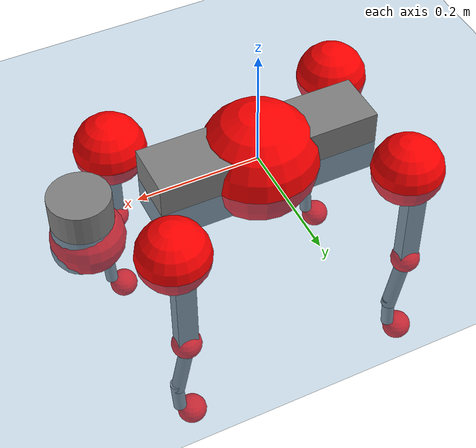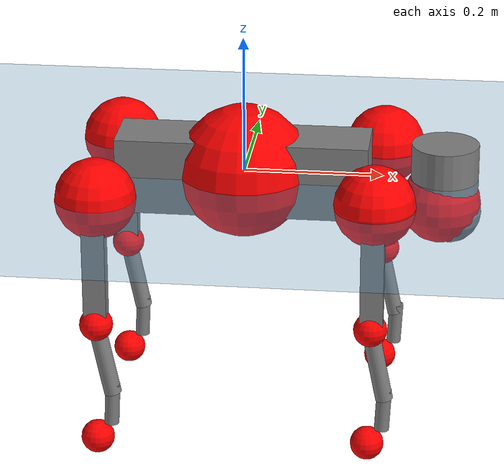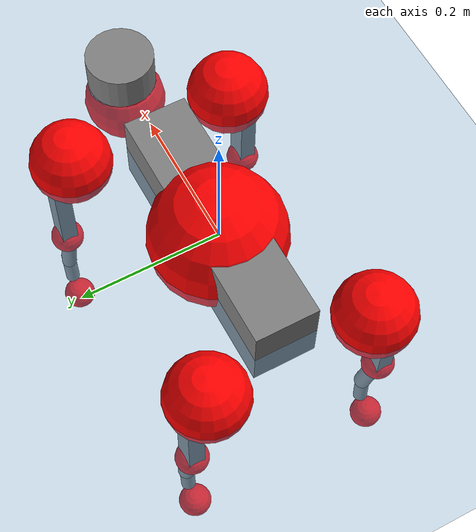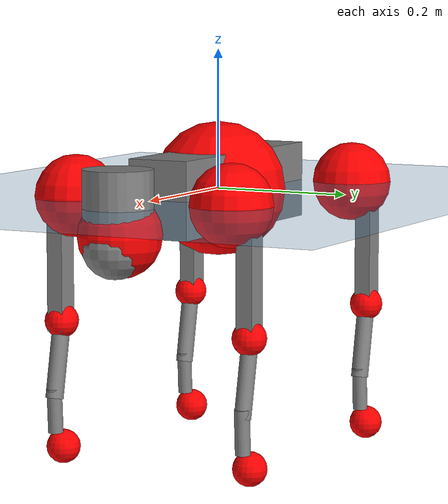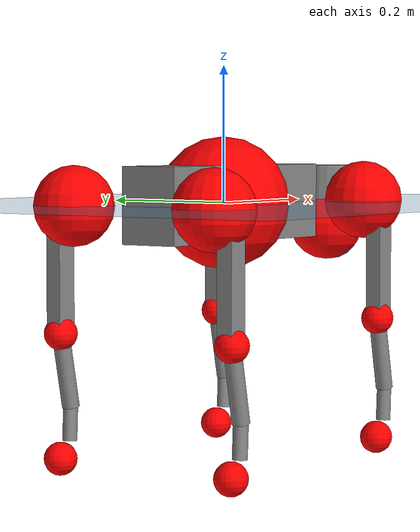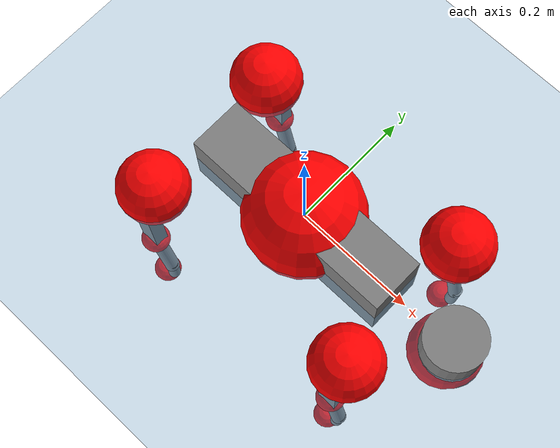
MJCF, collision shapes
<mujoco model="go2">
  <compiler angle="radian" assetdir="assets" balanceinertia="true" inertiafromgeom="false"/>

  <option timestep="0.005" density="1.2" viscosity="2e-05"/>

  <size nkey="1"/>

  <visual>
    <quality shadowsize="8192"/>
    <map shadowclip="0.5"/>
  </visual>

  <default>
    <default class="/">
      <geom contype="0" conaffinity="0" group="1" solref="-1000 -80"/>
      <site size="0.01 0.005 0.005" group="5"/>
      <general forcelimited="true" biastype="affine" gainprm="20" biasprm="0 -20 -0.5"/>
      <default class="go2">
        <joint armature="0.01" damping="0.01" frictionloss="0.2"/>
        <geom condim="1" margin="0.001"/>
        <default class="visual">
          <geom type="mesh" group="2"/>
        </default>
        <default class="collision">
          <geom group="3"/>
          <default class="foot">
            <geom size="0.022 0 0" condim="6" priority="1" friction="0.8 0.02 0.01" solimp="0.015 1 0.022"/>
          </default>
        </default>
        <default class="reward_collision_sphere">
          <geom group="5" rgba="1 0 0 1"/>
        </default>
      </default>
    </default>
  </default>

  <asset>
    <texture type="skybox" colorspace="auto" name="//unnamed_texture_0" builtin="gradient" rgb1="0.95 0.95 0.95" rgb2="0.95 0.95 0.95" width="100" height="600"/>
    <texture type="2d" colorspace="auto" name="texplane" builtin="checker" rgb1="0.345 0.575 0.748" rgb2="0.345 0.575 0.748" markrgb="1 1 1" width="512" height="512"/>
    <material name="MatPlane" class="/" texture="texplane" texuniform="true" texrepeat="2 2" specular="0.9"/>
    <material name="metal" class="/" rgba="0.9 0.95 0.95 1"/>
    <material name="black" class="/" rgba="0 0 0 1"/>
    <material name="white" class="/"/>
    <material name="gray" class="/" rgba="0.671705 0.692426 0.77427 1"/>
    <mesh name="base_0" class="/" file="base_0.obj"/>
    <mesh name="base_1" class="/" file="base_1.obj"/>
    <mesh name="base_2" class="/" file="base_2.obj"/>
    <mesh name="base_3" class="/" file="base_3.obj"/>
    <mesh name="base_4" class="/" file="base_4.obj"/>
    <mesh name="hip_0" class="/" file="hip_0.obj"/>
    <mesh name="hip_1" class="/" file="hip_1.obj"/>
    <mesh name="thigh_0" class="/" file="thigh_0.obj"/>
    <mesh name="thigh_1" class="/" file="thigh_1.obj"/>
    <mesh name="thigh_mirror_0" class="/" file="thigh_mirror_0.obj"/>
    <mesh name="thigh_mirror_1" class="/" file="thigh_mirror_1.obj"/>
    <mesh name="calf_0" class="/" file="calf_0.obj"/>
    <mesh name="calf_1" class="/" file="calf_1.obj"/>
    <mesh name="calf_mirror_0" class="/" file="calf_mirror_0.obj"/>
    <mesh name="calf_mirror_1" class="/" file="calf_mirror_1.obj"/>
    <mesh name="foot" class="/" file="foot.obj"/>
  </asset>

  <worldbody>
    <geom name="floor" class="/" size="100 100 0.125" type="plane" group="0" material="MatPlane"/>
    <light name="toplight_shadow" class="/" pos="0 0 5" dir="0.0990148 0.0990148 -0.990148" type="directional" ambient="0.04 0.04 0.04" diffuse="0.55 0.55 0.55" specular="0.12 0.12 0.12"/>
    <light name="toplight_fill" class="/" pos="0 0 5" dir="0.0990148 0.0990148 -0.990148" type="directional" castshadow="false" ambient="0.04 0.04 0.04" diffuse="0.3 0.3 0.3" specular="0.08 0.08 0.08"/>
    <body name="trunk" childclass="go2" pos="-0.000337565 0.000868437 8.90242e-05" quat="1 -0.000104209 0.000228248 0.000132406">
      <inertial pos="0.0205768 0.000210806 -0.00478021" quat="-0.000565245 0.713572 -0.00173938 0.700579" mass="6.25225" diaginertia="0.114317 0.117689 0.0104771"/>
      <joint name="//unnamed_joint_0" type="free" armature="0" damping="0" frictionloss="0"/>
      <geom name="//unnamed_geom_1" class="visual" material="black" mesh="base_0"/>
      <geom name="//unnamed_geom_2" class="visual" material="black" mesh="base_1"/>
      <geom name="//unnamed_geom_3" class="visual" material="black" mesh="base_2"/>
      <geom name="//unnamed_geom_4" class="visual" material="white" mesh="base_3"/>
      <geom name="//unnamed_geom_5" class="visual" material="gray" mesh="base_4"/>
      <geom name="trunk_1" class="collision" size="0.18173 0.0451668 0.0550696" type="box"/>
      <geom name="trunk_2" class="collision" size="0.0483067 0.043476" pos="0.289246 0 0.0084501" type="cylinder"/>
      <geom name="trunk_3" class="collision" size="0.0454083" pos="0.297365 0 -0.0507006"/>
      <geom name="//unnamed_geom_9" class="reward_collision_sphere" size="0.0966134"/>
      <geom name="//unnamed_geom_10" class="reward_collision_sphere" size="0.057968" pos="0.284171 0 -0.0380254"/>
      <site name="imu" pos="-0.0254176 0.000305721 0.0335123" size="0.00966134"/>
      <camera name="track" pos="0 -2.07699 0" quat="0.707107 0.707107 0 0" mode="trackcom"/>
      <camera name="ego_camera" pos="0.316648 0 0.0380254" quat="-0.5 -0.5 0.5 0.5"/>
      <body name="FL_hip" pos="0.196698 0.0496746 0.000266622" quat="1 5.79278e-05 -0.000131634 -0.00016961">
        <inertial pos="-0.00598358 0.00272551 0.000645611" quat="0.497002 0.499579 0.504589 0.498799" mass="0.609472" diaginertia="0.000946225 0.000716607 0.000204157"/>
        <joint name="FL_hip_joint" pos="0 0 0" axis="0.999998 0.00182796 -0.000365811" range="-1.04426 1.05328" armature="0.00931198" damping="0.00826577" frictionloss="0.190887"/>
        <geom name="//unnamed_geom_11" class="visual" material="metal" mesh="hip_0"/>
        <geom name="//unnamed_geom_12" class="visual" material="gray" mesh="hip_1"/>
        <geom name="//unnamed_geom_13" class="collision" size="0.0444422 0.0193227" pos="0 0.0830796 0" quat="0.707107 0.707107 0 0" type="cylinder"/>
        <geom name="//unnamed_geom_14" class="reward_collision_sphere" size="0.057968" pos="0 0.0726947 0"/>
        <body name="FL_thigh" pos="-0.000614027 0.0994995 0.000203736" quat="1 -9.95112e-05 -1.01222e-05 -2.56012e-05">
          <inertial pos="-0.00370476 -0.0230887 -0.027637" quat="0.828915 0.0839052 -0.0202305 0.552677" mass="1.03138" diaginertia="0.00642153 0.00708862 0.000378428"/>
          <joint name="FL_thigh_joint" pos="0 0 0" axis="9.76852e-05 1 0.000200623" stiffness="0.00914117" range="-1.5583 3.48167" armature="0.00928432" damping="0.00316446" frictionloss="0.187522"/>
          <geom name="//unnamed_geom_15" class="visual" material="metal" mesh="thigh_0"/>
          <geom name="//unnamed_geom_16" class="visual" material="gray" mesh="thigh_1"/>
          <geom name="//unnamed_geom_17" class="collision" size="0.102893 0.0118351 0.0164243" pos="0 0 -0.0899936" quat="0.707107 0 0.707107 0" type="box"/>
          <body name="FL_calf" pos="-0.000672871 -9.77335e-05 -0.179371" quat="1 -1.43576e-05 0.000424078 3.35439e-05">
            <inertial pos="0.00564008 -0.00140253 -0.118224" quat="0.710016 0.00164495 -0.00399125 0.704172" mass="0.218646" diaginertia="0.00159821 0.00175239 2.31345e-05"/>
            <joint name="FL_calf_joint" pos="0 0 0" axis="-0.00441746 0.999975 -0.00558188" stiffness="0.00159324" range="-2.72175 -0.82599" armature="0.0100687" damping="0.00474248" frictionloss="0.192791"/>
            <geom name="//unnamed_geom_18" class="visual" material="gray" mesh="calf_0"/>
            <geom name="//unnamed_geom_19" class="visual" material="black" mesh="calf_1"/>
            <geom name="FL_calf0" class="collision" size="0.0115936 0.057968" pos="0.00811918 0 -0.0507006" quat="0.994493 0 -0.104807 0" type="cylinder"/>
            <geom name="//unnamed_geom_21" class="collision" size="0.0106275 0.0313994" pos="0.0202979 0 -0.125061" quat="0.999688 0 0.0249974 0" type="cylinder"/>
            <geom name="//unnamed_geom_22" class="visual" pos="0 0 -0.179987" quat="1 0 0 0" material="black" mesh="foot"/>
            <geom name="FL_foot" class="foot" size="0.0163846" pos="-0.00202979 0 -0.179987"/>
            <geom name="//unnamed_geom_24" class="reward_collision_sphere" size="0.0241534"/>
            <geom name="//unnamed_geom_25" class="reward_collision_sphere" size="0.0241534" pos="-0.00202979 0 -0.179987"/>
            <site name="FL_foot" class="foot" pos="-0.00202979 0 -0.179987" size="0.00966134"/>
          </body>
        </body>
      </body>
      <body name="FR_hip" pos="0.196824 -0.0476806 0.00190911" quat="1 0.000127733 -2.79505e-05 -2.92252e-05">
        <inertial pos="-0.0057119 -0.0014553 -0.000318505" quat="0.498149 0.50491 0.499625 0.49728" mass="0.612882" diaginertia="0.000939552 0.000707807 0.000206814"/>
        <joint name="FR_hip_joint" pos="0 0 0" axis="1 -0.000626822 -0.000710022" stiffness="0.00657112" range="-1.06648 1.0483" armature="0.00942643" damping="0.0166016" frictionloss="0.197298"/>
        <geom name="//unnamed_geom_26" class="visual" pos="0 1.68556e-09 7.22973e-08" quat="4.63268e-05 1 0 0" material="metal" mesh="hip_0"/>
        <geom name="//unnamed_geom_27" class="visual" pos="0 2.7325e-09 -1.78819e-07" quat="4.63268e-05 1 0 0" material="gray" mesh="hip_1"/>
        <geom name="//unnamed_geom_28" class="collision" size="0.0444422 0.0193227" pos="0 -0.0830796 0" quat="0.707107 0.707107 0 0" type="cylinder"/>
        <geom name="//unnamed_geom_29" class="reward_collision_sphere" size="0.057968" pos="0 -0.0726947 0"/>
        <body name="FR_thigh" pos="0.000128081 -0.0995485 0.00110231" quat="1 -2.38021e-05 -1.47823e-05 4.53018e-05">
          <inertial pos="-0.00289758 0.0226614 -0.0278476" quat="0.551713 -0.0202369 0.0847827 0.829467" mass="1.0286" diaginertia="0.00640254 0.00707897 0.000381125"/>
          <joint name="FR_thigh_joint" pos="0 0 0" axis="-0.000105661 -0.999995 0.00309455" stiffness="0.000785037" range="-3.49954 1.57291" armature="0.00968311" damping="0.0103999" frictionloss="0.190638"/>
          <geom name="//unnamed_geom_30" class="visual" material="metal" mesh="thigh_mirror_0"/>
          <geom name="//unnamed_geom_31" class="visual" material="gray" mesh="thigh_mirror_1"/>
          <geom name="//unnamed_geom_32" class="collision" size="0.102893 0.0118351 0.0164243" pos="0 0 -0.0899936" quat="0.707107 0 0.707107 0" type="box"/>
          <body name="FR_calf" pos="-0.0015601 0.000636088 -0.17908" quat="1 -2.11168e-05 2.1216e-05 2.2258e-05">
            <inertial pos="0.00569922 0.000676208 -0.120031" quat="0.703595 -0.00475446 0.0015825 0.710584" mass="0.217523" diaginertia="0.00158684 0.00177482 2.27125e-05"/>
            <joint name="FR_calf_joint" pos="0 0 0" axis="-0.00142968 -0.99999 -0.00412126" stiffness="0.00244383" range="0.837851 2.72766" armature="0.00952917" damping="0.00336133" frictionloss="0.198092"/>
            <geom name="//unnamed_geom_33" class="visual" material="gray" mesh="calf_mirror_0"/>
            <geom name="//unnamed_geom_34" class="visual" material="black" mesh="calf_mirror_1"/>
            <geom name="FR_calf0" class="collision" size="0.0125597 0.057968" pos="0.010149 0 -0.0507006" quat="0.995004 0 -0.0998334 0" type="cylinder"/>
            <geom name="//unnamed_geom_36" class="collision" size="0.0106275 0.0313994" pos="0.0202979 0 -0.125061" quat="0.999688 0 0.0249974 0" type="cylinder"/>
            <geom name="//unnamed_geom_37" class="visual" pos="0 0 -0.179987" quat="1 0 0 0" material="black" mesh="foot"/>
            <geom name="FR_foot" class="foot" size="0.0213537" pos="-0.00202979 0 -0.179987"/>
            <geom name="//unnamed_geom_39" class="reward_collision_sphere" size="0.0241534"/>
            <geom name="//unnamed_geom_40" class="reward_collision_sphere" size="0.0241534" pos="-0.00202979 0 -0.179987"/>
            <site name="FR_foot" class="foot" pos="-0.00202979 0 -0.179987" size="0.00966134"/>
          </body>
        </body>
      </body>
      <body name="RL_hip" pos="-0.195916 0.0478519 -0.0016213" quat="1 -0.000650123 -5.30405e-05 9.17703e-05">
        <inertial pos="0.00547307 0.00240165 0.00017694" quat="0.505493 0.498364 0.496957 0.499142" mass="0.613795" diaginertia="0.000949089 0.00071105 0.000205092"/>
        <joint name="RL_hip_joint" pos="0 0 0" axis="-0.999807 0.0109085 0.0163441" range="-1.05764 1.04695" armature="0.0096468" damping="0.0194535" frictionloss="0.192882"/>
        <geom name="//unnamed_geom_41" class="visual" pos="-1.47999e-09 0 -2.90112e-07" quat="4.63268e-05 0 1 0" material="metal" mesh="hip_0"/>
        <geom name="//unnamed_geom_42" class="visual" pos="-2.39924e-09 0 -2.57288e-07" quat="4.63268e-05 0 1 0" material="gray" mesh="hip_1"/>
        <geom name="//unnamed_geom_43" class="collision" size="0.0444422 0.0193227" pos="0 0.0830796 0" quat="0.707107 0.707107 0 0" type="cylinder"/>
        <geom name="//unnamed_geom_44" class="reward_collision_sphere" size="0.057968" pos="0 0.0726947 0"/>
        <body name="RL_thigh" pos="-0.000541191 0.0979479 -0.0012592" quat="1 -6.87248e-05 -3.86624e-05 -0.000125454">
          <inertial pos="-0.00387202 -0.0232123 -0.0279162" quat="0.829817 0.0837785 -0.0207254 0.551322" mass="1.044" diaginertia="0.00643587 0.00711069 0.000379418"/>
          <joint name="RL_thigh_joint" pos="0 0 0" axis="0.00210283 0.999997 -0.00150257" range="-0.523058 4.54739" armature="0.0100502" damping="0.00260456" frictionloss="0.192094"/>
          <geom name="//unnamed_geom_45" class="visual" material="metal" mesh="thigh_0"/>
          <geom name="//unnamed_geom_46" class="visual" material="gray" mesh="thigh_1"/>
          <geom name="//unnamed_geom_47" class="collision" size="0.102893 0.0118351 0.0164243" pos="0 0 -0.0899936" quat="0.707107 0 0.707107 0" type="box"/>
          <body name="RL_calf" pos="-0.000204432 -0.000132465 -0.181386" quat="1 2.70447e-05 4.20402e-05 6.21789e-05">
            <inertial pos="0.00636197 -0.000480424 -0.120122" quat="0.710974 0.00122882 -0.00449107 0.703202" mass="0.21699" diaginertia="0.00160677 0.00176689 2.29536e-05"/>
            <joint name="RL_calf_joint" pos="0 0 0" axis="-0.00433061 0.999952 -0.00879526" range="-2.73091 -0.835206" armature="0.00968496" damping="0.00150584" frictionloss="0.192113"/>
            <geom name="//unnamed_geom_48" class="visual" material="gray" mesh="calf_0"/>
            <geom name="//unnamed_geom_49" class="visual" material="black" mesh="calf_1"/>
            <geom name="RL_calf0" class="collision" size="0.0125597 0.057968" pos="0.010149 0 -0.0507006" quat="0.995004 0 -0.0998334 0" type="cylinder"/>
            <geom name="//unnamed_geom_51" class="collision" size="0.0106275 0.0313994" pos="0.0202979 0 -0.125061" quat="0.999688 0 0.0249974 0" type="cylinder"/>
            <geom name="//unnamed_geom_52" class="visual" pos="0 0 -0.179987" quat="1 0 0 0" material="black" mesh="foot"/>
            <geom name="RL_foot" class="foot" size="0.0188553" pos="-0.00202979 0 -0.179987"/>
            <geom name="//unnamed_geom_54" class="reward_collision_sphere" size="0.0241534"/>
            <geom name="//unnamed_geom_55" class="reward_collision_sphere" size="0.0241534" pos="-0.00202979 0 -0.179987"/>
            <site name="RL_foot" class="foot" pos="-0.00202979 0 -0.179987" size="0.00966134"/>
          </body>
        </body>
      </body>
      <body name="RR_hip" pos="-0.196136 -0.0502195 -0.00249563" quat="1 0.000155549 0.000252221 0.000437687">
        <inertial pos="0.00525251 -0.00257885 0.000162295" quat="0.499318 0.497023 0.498339 0.50528" mass="0.610165" diaginertia="0.000939547 0.000710026 0.00020661"/>
        <joint name="RR_hip_joint" pos="0 0 0" axis="-1 -0.000499191 -0.000353369" range="-1.04148 1.04975" armature="0.00978549" damping="0.0121978" frictionloss="0.1958"/>
        <geom name="//unnamed_geom_56" class="visual" pos="1.4808e-09 1.68556e-09 -3.62409e-07" quat="2.14617e-09 4.63268e-05 4.63268e-05 -1" material="metal" mesh="hip_0"/>
        <geom name="//unnamed_geom_57" class="visual" pos="2.39722e-09 2.7325e-09 -7.84689e-08" quat="2.14617e-09 4.63268e-05 4.63268e-05 -1" material="gray" mesh="hip_1"/>
        <geom name="//unnamed_geom_58" class="collision" size="0.0444422 0.0193227" pos="0 -0.0830796 0" quat="0.707107 0.707107 0 0" type="cylinder"/>
        <geom name="//unnamed_geom_59" class="reward_collision_sphere" size="0.057968" pos="0 -0.0726947 0"/>
        <body name="RR_thigh" pos="0.000914618 -0.0996281 -0.00155574" quat="1 6.69593e-05 3.00825e-05 -2.87842e-06">
          <inertial pos="-0.00367158 0.0236663 -0.0277504" quat="0.551296 -0.0194827 0.0846707 0.829773" mass="1.04571" diaginertia="0.00642321 0.00706196 0.000378781"/>
          <joint name="RR_thigh_joint" pos="0 0 0" axis="0.00714611 -0.999967 -0.00374012" stiffness="0.00261714" range="-4.53869 0.50633" armature="0.0092982" damping="0.0135792" frictionloss="0.188779"/>
          <geom name="//unnamed_geom_60" class="visual" material="metal" mesh="thigh_mirror_0"/>
          <geom name="//unnamed_geom_61" class="visual" material="gray" mesh="thigh_mirror_1"/>
          <geom name="//unnamed_geom_62" class="collision" size="0.102893 0.0118351 0.0164243" pos="0 0 -0.0899936" quat="0.707107 0 0.707107 0" type="box"/>
          <body name="RR_calf" pos="8.47718e-05 -0.00151401 -0.180813" quat="1 -4.49471e-05 -1.97706e-05 4.67614e-05">
            <inertial pos="0.00699596 0.000824171 -0.120375" quat="0.703548 -0.00492114 0.00143577 0.710629" mass="0.21818" diaginertia="0.00157961 0.00177545 2.25033e-05"/>
            <joint name="RR_calf_joint" pos="0 0 0" axis="0.00174028 -0.999998 0.000162848" range="0.820499 2.745" armature="0.0100311" damping="0.00854466" frictionloss="0.19758"/>
            <geom name="//unnamed_geom_63" class="visual" material="gray" mesh="calf_mirror_0"/>
            <geom name="//unnamed_geom_64" class="visual" material="black" mesh="calf_mirror_1"/>
            <geom name="RR_calf0" class="collision" size="0.0125597 0.057968" pos="0.010149 0 -0.0507006" quat="0.995004 0 -0.0998334 0" type="cylinder"/>
            <geom name="//unnamed_geom_66" class="collision" size="0.0106275 0.0313994" pos="0.0202979 0 -0.125061" quat="0.999688 0 0.0249974 0" type="cylinder"/>
            <geom name="//unnamed_geom_67" class="visual" pos="0 0 -0.179987" quat="1 0 0 0" material="black" mesh="foot"/>
            <geom name="RR_foot" class="foot" size="0.0231863" pos="-0.00202979 0 -0.179987"/>
            <geom name="//unnamed_geom_69" class="reward_collision_sphere" size="0.0241534"/>
            <geom name="//unnamed_geom_70" class="reward_collision_sphere" size="0.0241534" pos="-0.00202979 0 -0.179987"/>
            <site name="RR_foot" class="foot" pos="-0.00202979 0 -0.179987" size="0.00966134"/>
          </body>
        </body>
      </body>
    </body>
  </worldbody>

  <contact>
    <pair class="/" geom1="floor" geom2="FL_foot" name="//unnamed_contact_0"/>
    <pair class="/" geom1="floor" geom2="FR_foot" name="//unnamed_contact_1"/>
    <pair class="/" geom1="floor" geom2="RL_foot" name="//unnamed_contact_2"/>
    <pair class="/" geom1="floor" geom2="RR_foot" name="//unnamed_contact_3"/>
  </contact>

  <actuator>
    <general name="FL_hip" class="/" joint="FL_hip_joint" forcerange="-23.1079 23.1079" gainprm="19.4217" biasprm="0 -19.4217 -0.484224"/>
    <general name="FL_thigh" class="/" joint="FL_thigh_joint" forcerange="-23.5362 23.5362" gainprm="19.4217" biasprm="0 -19.4217 -0.484224"/>
    <general name="FL_calf" class="/" joint="FL_calf_joint" forcerange="-43.6227 43.6227" gainprm="19.4217" biasprm="0 -19.4217 -0.484224"/>
    <general name="FR_hip" class="/" joint="FR_hip_joint" forcerange="-23.472 23.472" gainprm="19.4217" biasprm="0 -19.4217 -0.484224"/>
    <general name="FR_thigh" class="/" joint="FR_thigh_joint" forcerange="-22.736 22.736" gainprm="19.4217" biasprm="0 -19.4217 -0.484224"/>
    <general name="FR_calf" class="/" joint="FR_calf_joint" forcerange="-44.9086 44.9086" gainprm="19.4217" biasprm="0 -19.4217 -0.484224"/>
    <general name="RL_hip" class="/" joint="RL_hip_joint" forcerange="-23.0254 23.0254" gainprm="19.4217" biasprm="0 -19.4217 -0.484224"/>
    <general name="RL_thigh" class="/" joint="RL_thigh_joint" forcerange="-23.1396 23.1396" gainprm="19.4217" biasprm="0 -19.4217 -0.484224"/>
    <general name="RL_calf" class="/" joint="RL_calf_joint" forcerange="-43.7214 43.7214" gainprm="19.4217" biasprm="0 -19.4217 -0.484224"/>
    <general name="RR_hip" class="/" joint="RR_hip_joint" forcerange="-22.9324 22.9324" gainprm="19.4217" biasprm="0 -19.4217 -0.484224"/>
    <general name="RR_thigh" class="/" joint="RR_thigh_joint" forcerange="-22.5938 22.5938" gainprm="19.4217" biasprm="0 -19.4217 -0.484224"/>
    <general name="RR_calf" class="/" joint="RR_calf_joint" forcerange="-44.2301 44.2301" gainprm="19.4217" biasprm="0 -19.4217 -0.484224"/>
  </actuator>

  <sensor>
    <gyro site="imu" name="imu_angular_velocity"/>
    <velocimeter site="imu" name="imu_linear_velocity"/>
    <framelinvel objtype="site" objname="FL_foot" name="FL_foot_global_linear_velocity"/>
    <framelinvel objtype="site" objname="FR_foot" name="FR_foot_global_linear_velocity"/>
    <framelinvel objtype="site" objname="RL_foot" name="RL_foot_global_linear_velocity"/>
    <framelinvel objtype="site" objname="RR_foot" name="RR_foot_global_linear_velocity"/>
  </sensor>

  <keyframe>
    <key name="home" qpos="0 0 0.325 1 0 0 0 0.1 0.8 -1.5 -0.1 -0.8 1.5 -0.1 0.8 -1.5 0.1 -0.8 1.5"/>
  </keyframe>
</mujoco>
